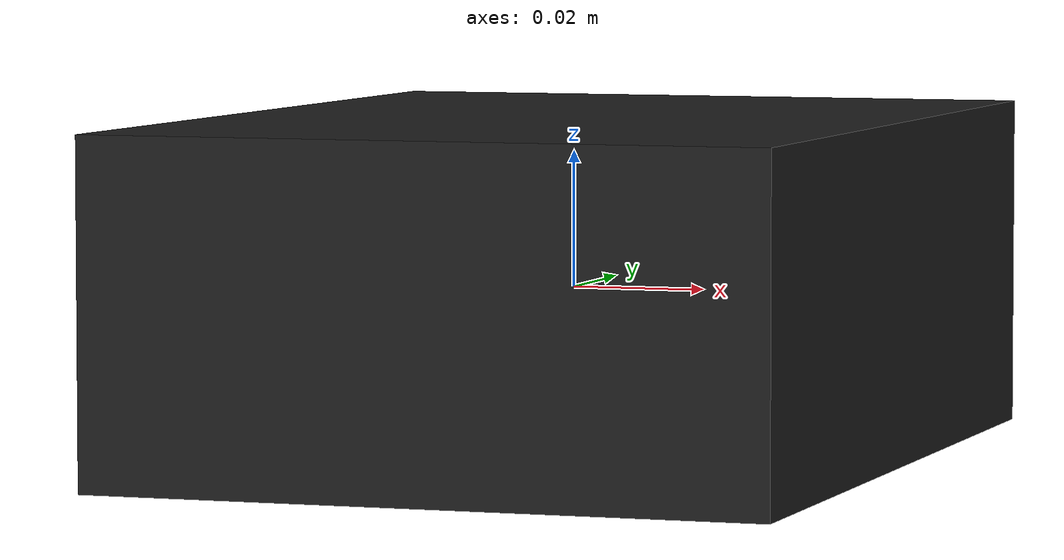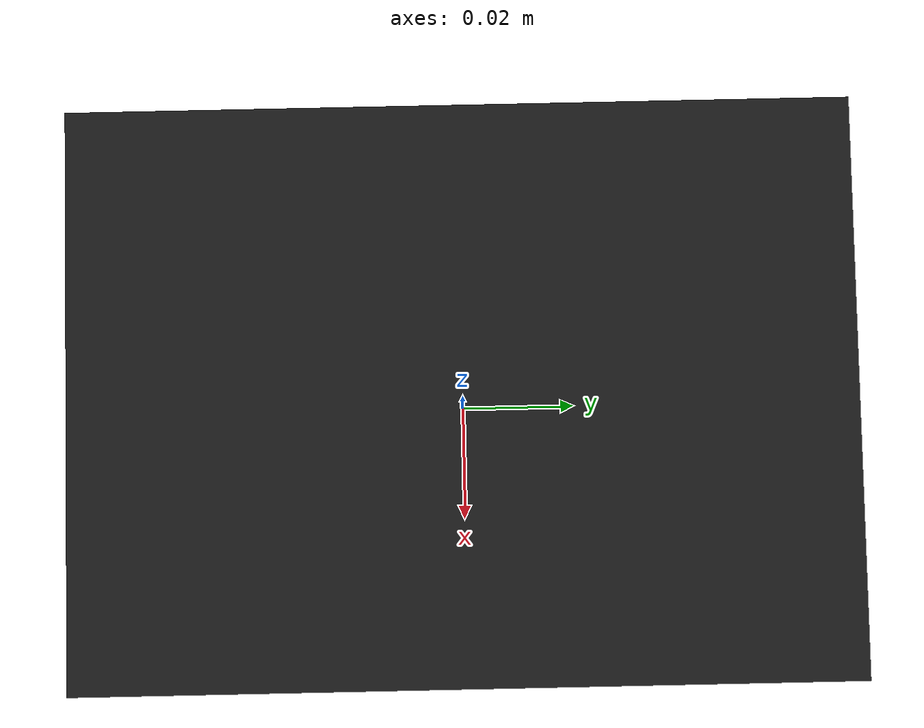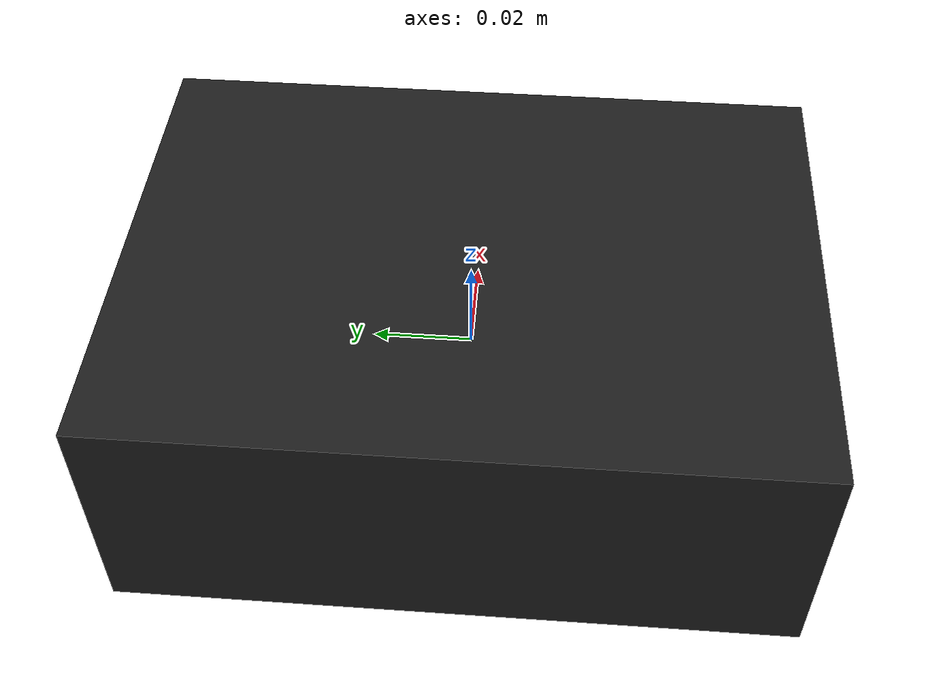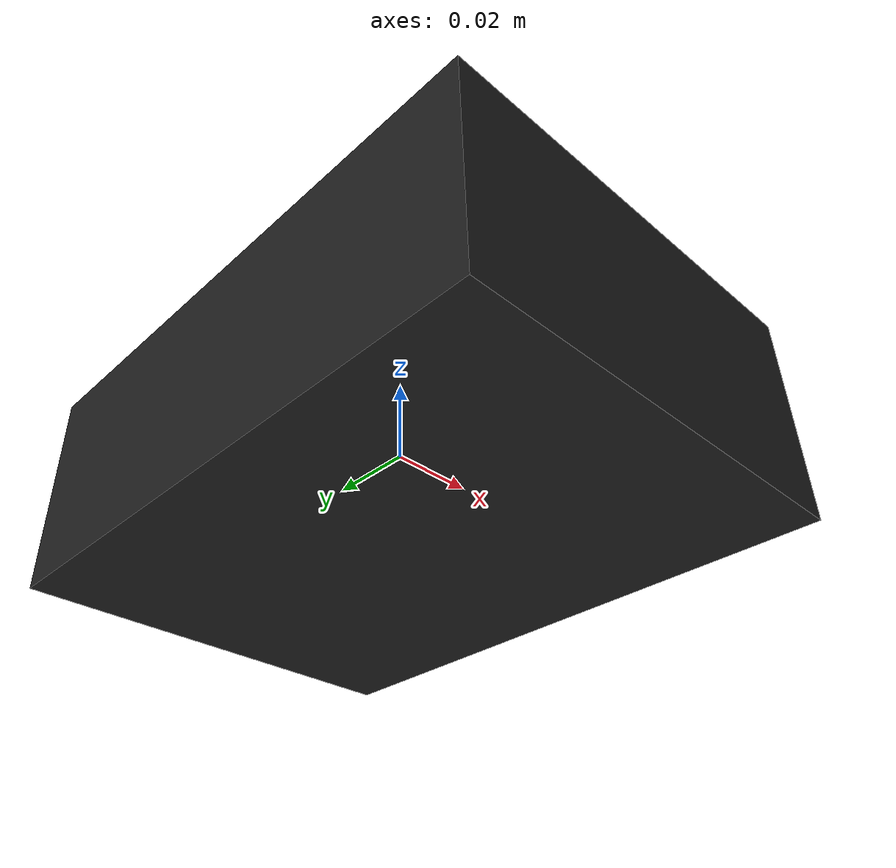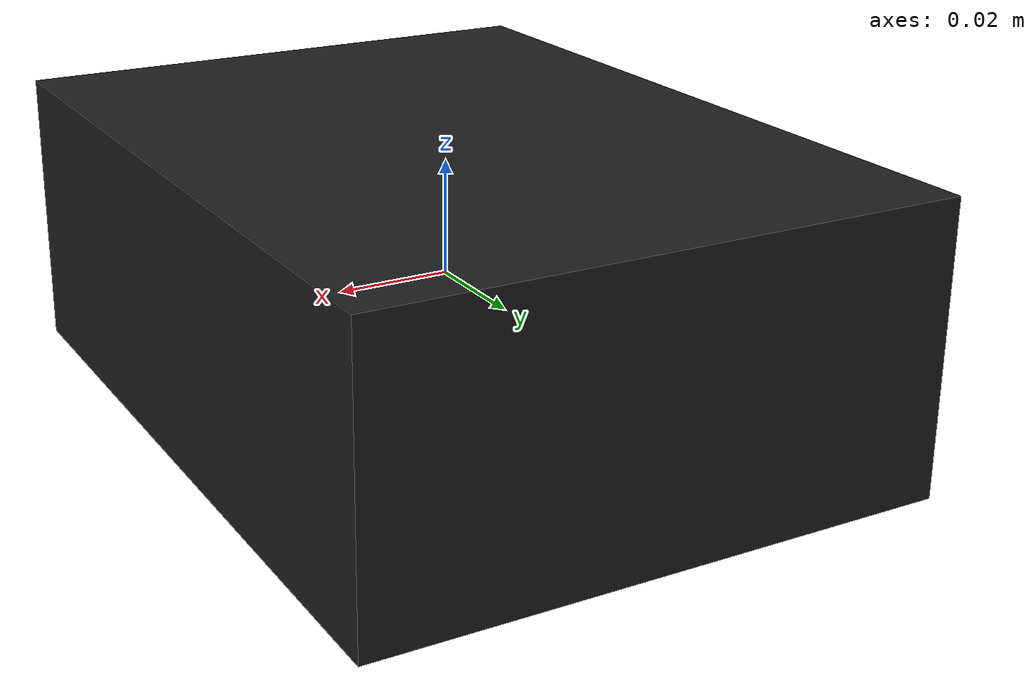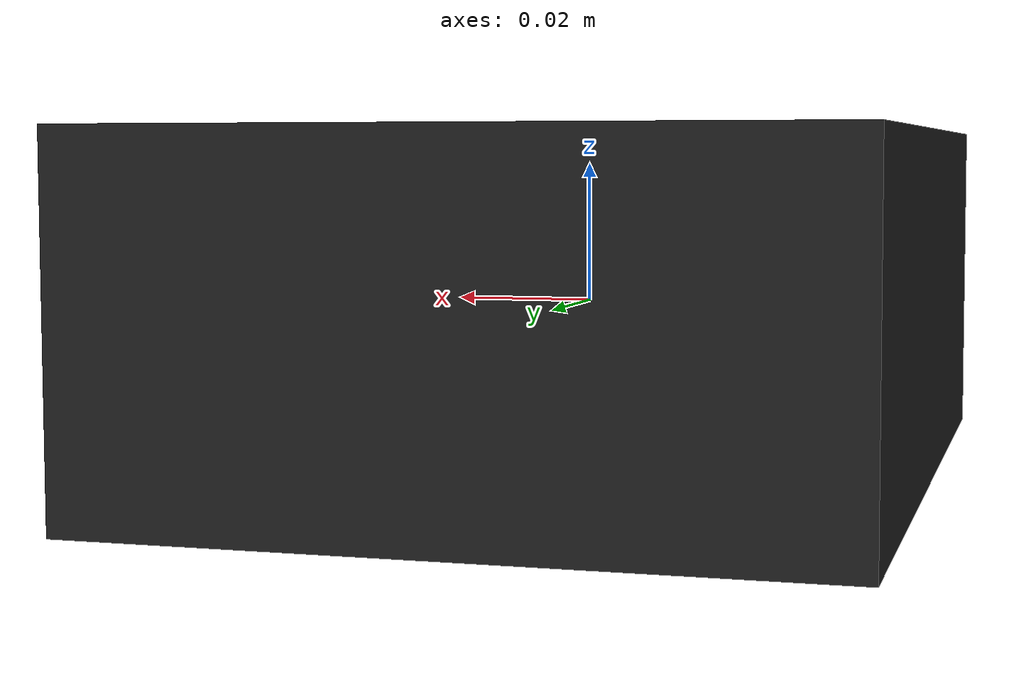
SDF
<?xml version="1.0" ?>
<sdf version="1.5">
 <model name="turtlebot2_dock">
 <allow_auto_disable>1</allow_auto_disable>
 <static>1</static>
 <pose>0 0 0 0 0 0</pose>
 <link name="turtlebot2_dock">
   <collision name='collision'>
     <geometry>
       <box>
	 <size>.1 .1 .05</size>
       </box>
     </geometry>
   </collision>
   <visual name='visual'>
     <transparency>0</transparency>
     <geometry>
       <box>
	 <size>.1 .135 .05</size>
       </box>
     </geometry>
     <material>
       <script>
	 <uri>file://media/materials/scripts/gazebo.material</uri>
	 <name>Gazebo/Black</name>
       </script>
     </material>
   </visual>
 </link>
 </model>
</sdf>
